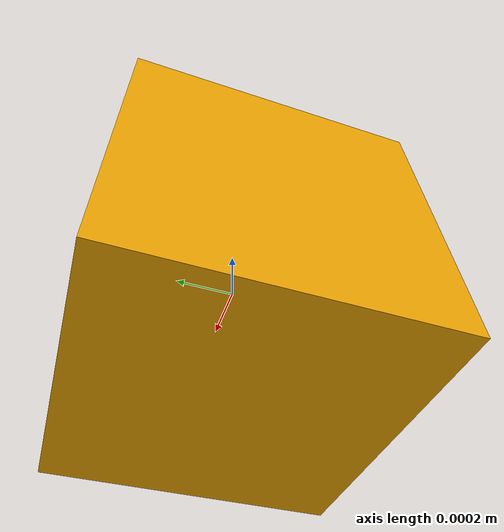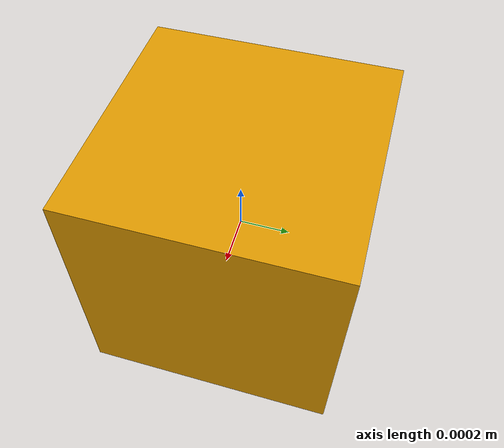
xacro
<?xml version="1.0" ?>
<!-- |    This document was autogenerated by xacro from robot.xacro                    | -->
<!-- |    EDITING THIS FILE BY HAND IS NOT RECOMMENDED                                 | -->
<robot name="laikago_description" xmlns:xacro="http://www.ros.org/wiki/xacro">
    <link name="base">
        <visual>
            <origin rpy="0 0 0" xyz="0 0 0"/>
            <geometry>
                <box size="0.001 0.001 0.001"/>
            </geometry>
        </visual>
    </link>

    <joint name="floating_base" type="fixed">
        <origin rpy="0 0 0" xyz="0 0 0"/>
        <parent link="base"/>
        <child link="base_inertia"/>
    </joint>
  <link name="base_inertia">
    <inertial>
      <origin rpy="0 0 0" xyz="0.002284 -4.1e-05 0.025165"/>
      <mass value="13.733"/>
      <inertia ixx="0.073348887" ixy="0.00030338" ixz="0.001918218" iyy="0.250684593" iyz="-7.5402e-05" izz="0.254469458"/>
    </inertial>
  </link>
    <link name="imu_link">
        <inertial>
            <mass value="0.001"/>
            <origin rpy="0 0 0" xyz="0 0 0"/>
            <inertia ixx="0.0001" ixy="0" ixz="0" iyy="0.000001" iyz="0" izz="0.0001"/>
        </inertial>
        <visual>
            <origin rpy="0 0 0" xyz="0 0 0"/>
            <geometry>
                <box size="0.001 0.001 0.001"/>
            </geometry>
            <material name="red"/>
        </visual>
        <collision>
            <origin rpy="0 0 0" xyz="0 0 0"/>
            <geometry>
                <box size=".001 .001 .001"/>
            </geometry>
        </collision>
    </link>
    <joint name="imu_joint" type="fixed">
        <parent link="base"/>
        <child link="imu_link"/>
        <origin rpy="0 0 0" xyz="0 0 0"/>
    </joint>
  <joint name="RF_HAA" type="revolute">
    <origin rpy="0 0 0" xyz="0.21935 -0.0875 0"/>
    <parent link="base"/>
    <child link="RF_HIP"/>
    <axis xyz="1 0 0"/>
    <dynamics damping="0" friction="0"/>
    <limit effort="20" lower="-1.0471975512" upper="0.872664625997" velocity="52.4"/>
  </joint>
  <link name="RF_HIP">
    <inertial>
      <origin rpy="0 0 0" xyz="-0.001568 0.008134 0.000864"/>
      <mass value="1.096"/>
      <inertia ixx="0.000822113" ixy="4.982e-06" ixz="-3.672e-05" iyy="0.000983196" iyz="-2.811e-06" izz="0.000864753"/>
    </inertial>
  </link>
  <joint name="RF_HFE" type="revolute">
    <origin rpy="0 0 0" xyz="0 -0.037 0"/>
    <parent link="RF_HIP"/>
    <child link="RF_THIGH"/>
    <axis xyz="0 1 0"/>
    <dynamics damping="0" friction="0"/>
    <limit effort="55" lower="-0.523598775598" upper="3.92699081699" velocity="28.6"/>
  </joint>
  <link name="RF_THIGH">
    <inertial>
      <origin rpy="0 0 0" xyz="-0.000482 -0.02001 -0.031996"/>
      <mass value="1.528"/>
      <inertia ixx="0.00991611" ixy="-1.0388e-05" ixz="0.000250428" iyy="0.009280083" iyz="8.511e-05" izz="0.00178256"/>
    </inertial>
  </link>
  <joint name="RF_KFE" type="revolute">
    <origin rpy="0 0 0" xyz="0 0 -0.25"/>
    <parent link="RF_THIGH"/>
    <child link="RF_SHANK"/>
    <axis xyz="0 1 0"/>
    <dynamics damping="0" friction="0"/>
    <limit effort="55" lower="-2.77507351067" upper="-0.610865238198" velocity="28.6"/>
  </joint>
  <link name="RF_SHANK">
    <inertial>
      <origin rpy="0 0 0" xyz="-0.002196 -0.000381 -0.12338"/>
      <mass value="0.241"/>
      <inertia ixx="0.006181961" ixy="2.37e-07" ixz="-2.985e-06" iyy="0.006196546" iyz="5.138e-06" izz="3.4774e-05"/>
    </inertial>
  </link>
  <joint name="RF_ADAPTER" type="fixed">
    <origin rpy="0 0 0" xyz="0 0 -0.25"/>
    <parent link="RF_SHANK"/>
    <child link="RF_FOOT"/>
  </joint>
  <link name="RF_FOOT">
    <inertial>
      <mass value="0.06"/>
      <inertia ixx="1.6854e-05" ixy="0.0" ixz="0.0" iyy="1.6854e-05" iyz="0.0" izz="1.6854e-05"/>
    </inertial>
  </link>

  <joint name="LF_HAA" type="revolute">
    <origin rpy="0 0 0" xyz="0.21935 0.0875 0"/>
    <parent link="base"/>
    <child link="LF_HIP"/>
    <axis xyz="1 0 0"/>
    <dynamics damping="0" friction="0"/>
    <limit effort="20" lower="-0.872664625997" upper="1.0471975512" velocity="52.4"/>
  </joint>
  <link name="LF_HIP">
    <inertial>
      <origin rpy="0 0 0" xyz="-0.001568 -0.008134 0.000864"/>
      <mass value="1.096"/>
      <inertia ixx="0.000822113" ixy="-4.982e-06" ixz="-3.672e-05" iyy="0.000983196" iyz="2.811e-06" izz="0.000864753"/>
    </inertial>
  </link>
  <joint name="LF_HFE" type="revolute">
    <origin rpy="0 0 0" xyz="0 0.037 0"/>
    <parent link="LF_HIP"/>
    <child link="LF_THIGH"/>
    <axis xyz="0 1 0"/>
    <dynamics damping="0" friction="0"/>
    <limit effort="55" lower="-0.523598775598" upper="3.92699081699" velocity="28.6"/>
  </joint>
  <link name="LF_THIGH">
    <inertial>
      <origin rpy="0 0 0" xyz="-0.000482 0.02001 -0.031996"/>
      <mass value="1.528"/>
      <inertia ixx="0.00991611" ixy="1.0388e-05" ixz="0.000250428" iyy="0.009280083" iyz="-8.511e-05" izz="0.00178256"/>
    </inertial>
  </link>
  <joint name="LF_KFE" type="revolute">
    <origin rpy="0 0 0" xyz="0 0 -0.25"/>
    <parent link="LF_THIGH"/>
    <child link="LF_SHANK"/>
    <axis xyz="0 1 0"/>
    <dynamics damping="0" friction="0"/>
    <limit effort="55" lower="-2.77507351067" upper="-0.610865238198" velocity="28.6"/>
  </joint>
  <link name="LF_SHANK">
    <inertial>
      <origin rpy="0 0 0" xyz="-0.002196 -0.000381 -0.12338"/>
      <mass value="0.241"/>
      <inertia ixx="0.006181961" ixy="2.37e-07" ixz="-2.985e-06" iyy="0.006196546" iyz="5.138e-06" izz="3.4774e-05"/>
    </inertial>
  </link>
  <joint name="LF_ADAPTER" type="fixed">
    <origin rpy="0 0 0" xyz="0 0 -0.25"/>
    <parent link="LF_SHANK"/>
    <child link="LF_FOOT"/>
  </joint>
  <link name="LF_FOOT">
    <inertial>
      <mass value="0.06"/>
      <inertia ixx="1.6854e-05" ixy="0.0" ixz="0.0" iyy="1.6854e-05" iyz="0.0" izz="1.6854e-05"/>
    </inertial>
  </link>

  <joint name="RH_HAA" type="revolute">
    <origin rpy="0 0 0" xyz="-0.21935 -0.0875 0"/>
    <parent link="base"/>
    <child link="RH_HIP"/>
    <axis xyz="1 0 0"/>
    <dynamics damping="0" friction="0"/>
    <limit effort="20" lower="-1.0471975512" upper="0.872664625997" velocity="52.4"/>
  </joint>
  <link name="RH_HIP">
    <inertial>
      <origin rpy="0 0 0" xyz="0.001568 0.008134 0.000864"/>
      <mass value="1.096"/>
      <inertia ixx="0.000822113" ixy="-4.982e-06" ixz="3.672e-05" iyy="0.000983196" iyz="-2.811e-06" izz="0.000864753"/>
    </inertial>
  </link>
  <joint name="RH_HFE" type="revolute">
    <origin rpy="0 0 0" xyz="0 -0.037 0"/>
    <parent link="RH_HIP"/>
    <child link="RH_THIGH"/>
    <axis xyz="0 1 0"/>
    <dynamics damping="0" friction="0"/>
    <limit effort="55" lower="-0.523598775598" upper="3.92699081699" velocity="28.6"/>
  </joint>
  <link name="RH_THIGH">
    <inertial>
      <origin rpy="0 0 0" xyz="-0.000482 -0.02001 -0.031996"/>
      <mass value="1.528"/>
      <inertia ixx="0.00991611" ixy="-1.0388e-05" ixz="0.000250428" iyy="0.009280083" iyz="8.511e-05" izz="0.00178256"/>
    </inertial>
  </link>
  <joint name="RH_KFE" type="revolute">
    <origin rpy="0 0 0" xyz="0 0 -0.25"/>
    <parent link="RH_THIGH"/>
    <child link="RH_SHANK"/>
    <axis xyz="0 1 0"/>
    <dynamics damping="0" friction="0"/>
    <limit effort="55" lower="-2.77507351067" upper="-0.610865238198" velocity="28.6"/>
  </joint>
  <link name="RH_SHANK">
    <inertial>
      <origin rpy="0 0 0" xyz="-0.002196 -0.000381 -0.12338"/>
      <mass value="0.241"/>
      <inertia ixx="0.006181961" ixy="2.37e-07" ixz="-2.985e-06" iyy="0.006196546" iyz="5.138e-06" izz="3.4774e-05"/>
    </inertial>
  </link>
  <joint name="RH_ADAPTER" type="fixed">
    <origin rpy="0 0 0" xyz="0 0 -0.25"/>
    <parent link="RH_SHANK"/>
    <child link="RH_FOOT"/>
  </joint>
  <link name="RH_FOOT">
    <inertial>
      <mass value="0.06"/>
      <inertia ixx="1.6854e-05" ixy="0.0" ixz="0.0" iyy="1.6854e-05" iyz="0.0" izz="1.6854e-05"/>
    </inertial>
  </link>

  <joint name="LH_HAA" type="revolute">
    <origin rpy="0 0 0" xyz="-0.21935 0.0875 0"/>
    <parent link="base"/>
    <child link="LH_HIP"/>
    <axis xyz="1 0 0"/>
    <dynamics damping="0" friction="0"/>
    <limit effort="20" lower="-0.872664625997" upper="1.0471975512" velocity="52.4"/>
  </joint>
  <link name="LH_HIP">
    <inertial>
      <origin rpy="0 0 0" xyz="0.001568 -0.008134 0.000864"/>
      <mass value="1.096"/>
      <inertia ixx="0.000822113" ixy="4.982e-06" ixz="3.672e-05" iyy="0.000983196" iyz="2.811e-06" izz="0.000864753"/>
    </inertial>
  </link>
  <joint name="LH_HFE" type="revolute">
    <origin rpy="0 0 0" xyz="0 0.037 0"/>
    <parent link="LH_HIP"/>
    <child link="LH_THIGH"/>
    <axis xyz="0 1 0"/>
    <dynamics damping="0" friction="0"/>
    <limit effort="55" lower="-0.523598775598" upper="3.92699081699" velocity="28.6"/>
  </joint>
  <link name="LH_THIGH">
    <inertial>
      <origin rpy="0 0 0" xyz="-0.000482 0.02001 -0.031996"/>
      <mass value="1.528"/>
      <inertia ixx="0.00991611" ixy="1.0388e-05" ixz="0.000250428" iyy="0.009280083" iyz="-8.511e-05" izz="0.00178256"/>
    </inertial>
  </link>
  <joint name="LH_KFE" type="revolute">
    <origin rpy="0 0 0" xyz="0 0 -0.25"/>
    <parent link="LH_THIGH"/>
    <child link="LH_SHANK"/>
    <axis xyz="0 1 0"/>
    <dynamics damping="0" friction="0"/>
    <limit effort="55" lower="-2.77507351067" upper="-0.610865238198" velocity="28.6"/>
  </joint>
  <link name="LH_SHANK">
    <inertial>
      <origin rpy="0 0 0" xyz="-0.002196 -0.000381 -0.12338"/>
      <mass value="0.241"/>
      <inertia ixx="0.006181961" ixy="2.37e-07" ixz="-2.985e-06" iyy="0.006196546" iyz="5.138e-06" izz="3.4774e-05"/>
    </inertial>
  </link>
  <joint name="LH_ADAPTER" type="fixed">
    <origin rpy="0 0 0" xyz="0 0 -0.25"/>
    <parent link="LH_SHANK"/>
    <child link="LH_FOOT"/>
  </joint>
  <link name="LH_FOOT">
    <inertial>
      <mass value="0.06"/>
      <inertia ixx="1.6854e-05" ixy="0.0" ixz="0.0" iyy="1.6854e-05" iyz="0.0" izz="1.6854e-05"/>
    </inertial>
  </link>
</robot>
